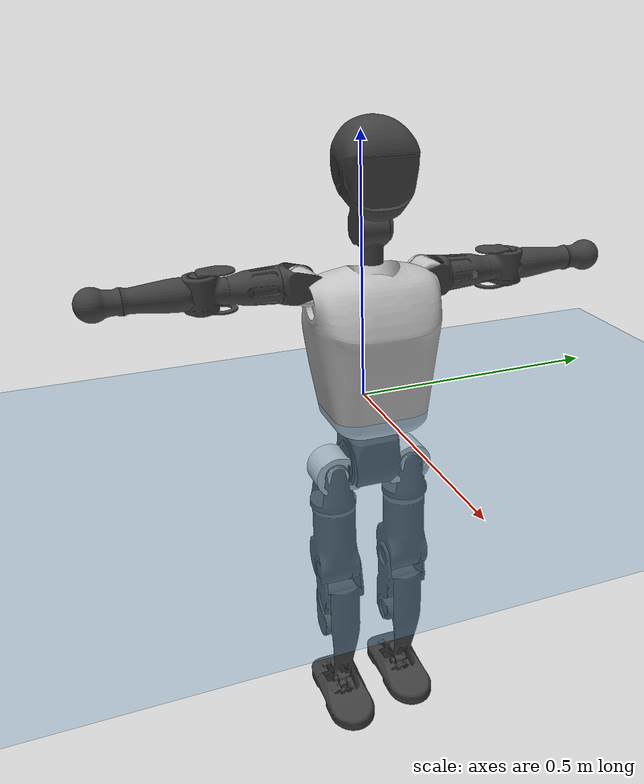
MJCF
<mujoco model="T1">
  <compiler angle="radian" assetdir="assets" balanceinertia="true" inertiafromgeom="false"/>

  <option timestep="0.005" density="1.2" viscosity="2e-05"/>

  <size nkey="1"/>

  <visual>
    <quality shadowsize="8192"/>
    <map shadowclip="0.5"/>
  </visual>

  <default>
    <default class="/">
      <joint armature="0.01" damping="0.01" frictionloss="0.1"/>
      <geom contype="0" conaffinity="0" group="1" solref="-1000 -80"/>
      <site size="0.01 0.005 0.005" group="5"/>
      <general forcelimited="true" biastype="affine" gainprm="25" biasprm="0 -25 -0.6"/>
      <default class="t1">
        <geom rgba="0.25 0.25 0.25 1"/>
        <default class="visual">
          <geom type="mesh" group="2"/>
        </default>
        <default class="collision">
          <geom group="3"/>
        </default>
        <default class="foot">
          <geom size="0.1115 0.05 0.015" type="box" condim="6" group="4" priority="1" solimp="0.015 1 0.015"/>
        </default>
        <default class="reward_collision_sphere">
          <geom group="5" rgba="1 0 0 1"/>
        </default>
      </default>
    </default>
  </default>

  <asset>
    <texture type="skybox" colorspace="auto" name="//unnamed_texture_0" builtin="gradient" rgb1="0.95 0.95 0.95" rgb2="0.95 0.95 0.95" width="100" height="600"/>
    <texture type="2d" colorspace="auto" name="texplane" builtin="checker" rgb1="0.345 0.575 0.748" rgb2="0.345 0.575 0.748" markrgb="1 1 1" width="512" height="512"/>
    <material name="MatPlane" class="/" texture="texplane" texuniform="true" texrepeat="2 2" specular="0.9"/>
    <mesh name="Trunk" class="/" file="Trunk.stl"/>
    <mesh name="H1" class="/" file="H1.stl"/>
    <mesh name="H2" class="/" file="H2.stl"/>
    <mesh name="AL1" class="/" file="AL1.stl"/>
    <mesh name="AL2" class="/" file="AL2.stl"/>
    <mesh name="AL3" class="/" file="AL3.stl"/>
    <mesh name="left_hand_link" class="/" file="left_hand_link.stl"/>
    <mesh name="AR1" class="/" file="AR1.stl"/>
    <mesh name="AR2" class="/" file="AR2.stl"/>
    <mesh name="AR3" class="/" file="AR3.stl"/>
    <mesh name="right_hand_link" class="/" file="right_hand_link.stl"/>
    <mesh name="Waist" class="/" file="Waist.stl"/>
    <mesh name="Hip_Pitch_Left" class="/" file="Hip_Pitch_Left.stl"/>
    <mesh name="Hip_Roll_Left" class="/" file="Hip_Roll_Left.stl"/>
    <mesh name="Hip_Yaw_Left" class="/" file="Hip_Yaw_Left.stl"/>
    <mesh name="Shank_Left" class="/" file="Shank_Left.stl"/>
    <mesh name="Ankle_Cross_Left" class="/" file="Ankle_Cross_Left.stl"/>
    <mesh name="left_foot_link" class="/" file="left_foot_link.stl"/>
    <mesh name="Hip_Pitch_Right" class="/" file="Hip_Pitch_Right.stl"/>
    <mesh name="Hip_Roll_Right" class="/" file="Hip_Roll_Right.stl"/>
    <mesh name="Hip_Yaw_Right" class="/" file="Hip_Yaw_Right.stl"/>
    <mesh name="Shank_Right" class="/" file="Shank_Right.stl"/>
    <mesh name="Ankle_Cross_Right" class="/" file="Ankle_Cross_Right.stl"/>
    <mesh name="right_foot_link" class="/" file="right_foot_link.stl"/>
  </asset>

  <worldbody>
    <geom name="floor" class="/" size="100 100 0.125" type="plane" group="0" material="MatPlane"/>
    <light name="toplight_shadow" class="/" pos="0 0 5" dir="0.0990148 0.0990148 -0.990148" type="directional" ambient="0.04 0.04 0.04" diffuse="0.55 0.55 0.55" specular="0.12 0.12 0.12"/>
    <light name="toplight_fill" class="/" pos="0 0 5" dir="0.0990148 0.0990148 -0.990148" type="directional" castshadow="false" ambient="0.04 0.04 0.04" diffuse="0.3 0.3 0.3" specular="0.08 0.08 0.08"/>
    <body name="trunk" childclass="t1" pos="-0.00263673 -0.000256816 -0.00109948" quat="0.999999 0.000512636 -0.000821101 -0.000265855">
      <inertial pos="0.0226895 -0.000303423 0.11646" quat="0.999952 0.000703869 -0.00906243 -0.00359469" mass="4.6573" diaginertia="0.00119701 0.0179255 0.0854578"/>
      <joint name="//unnamed_joint_0" type="free" armature="0" damping="0" frictionloss="0"/>
      <geom name="//unnamed_geom_1" class="visual" rgba="0.76 0.76 0.76 1" mesh="Trunk"/>
      <geom name="//unnamed_geom_2" class="collision" size="0.0568113 0.0757485 0.113623" pos="0.0255667 0 0.131707" type="box"/>
      <geom name="//unnamed_geom_3" class="reward_collision_sphere" size="0.0871107" pos="0.0255667 0 0.109756"/>
      <geom name="//unnamed_geom_4" class="reward_collision_sphere" size="0.0113623" pos="0.0255667 0.0636468 0"/>
      <geom name="//unnamed_geom_5" class="reward_collision_sphere" size="0.0113623" pos="0.0255667 -0.0636468 0"/>
      <geom name="//unnamed_geom_6" class="reward_collision_sphere" size="0.0113623" pos="0.0255667 0.08012 0.19756"/>
      <geom name="//unnamed_geom_7" class="reward_collision_sphere" size="0.0113623" pos="0.0255667 -0.08012 0.19756"/>
      <site name="imu" pos="0.0331209 0.001126 -0.0173494" size="0.00757485"/>
      <camera name="track" pos="0 -1.49757 0" quat="0.707107 0.707107 0 0" mode="trackcom"/>
      <camera name="ego_camera" pos="0.0519857 0 0.460974" quat="-0.5 -0.5 0.5 0.5"/>
      <body name="H1" pos="0.0346323 0.00696653 0.274674" quat="1 -8.96567e-05 -0.000397013 -0.000451936">
        <inertial pos="0.00153445 -0.00234178 0.0637766" quat="0.783835 -0.0244952 0.00623399 0.620455" mass="0.179725" diaginertia="3.41323e-06 5.66301e-05 0.000232673"/>
        <joint name="AAHead_yaw" pos="0 0 0" axis="-0.0151642 -0.027252 0.999514" range="-1.60404 1.58564" armature="0.00570229" damping="0.00671533" frictionloss="0.0702345"/>
        <geom name="//unnamed_geom_8" class="visual" mesh="H1"/>
        <body name="H2" pos="0.000116139 -0.00149596 0.0671544" quat="0.999998 -0.000320258 -0.00217265 -0.000114455">
          <inertial pos="0.00257572 0.00838194 0.107232" quat="0.987147 0.114198 -0.0756302 -0.082336" mass="0.255205" diaginertia="2.81355e-05 0.000451408 0.00266664"/>
          <joint name="Head_pitch" pos="0 0 0" axis="3.54942e-05 -1 -0.000189432" stiffness="0.00670585" range="-1.19651 0.343337" armature="0.0066041" damping="0.00352538" frictionloss="0.0729904"/>
          <geom name="//unnamed_geom_9" class="visual" mesh="H2"/>
          <geom name="//unnamed_geom_10" class="collision" size="0.0605988" pos="0.00426112 0 0.120731"/>
          <geom name="//unnamed_geom_11" class="reward_collision_sphere" size="0.0681736" pos="0.00852224 0 0.109756"/>
        </body>
      </body>
      <body name="AL1" pos="0.0248371 0.0735427 0.238384" quat="1 1.81241e-05 0.000184257 0.00011892">
        <inertial pos="0.00689322 0.0269454 0.0039577" quat="0.5072 0.49978 -0.502116 0.490763" mass="0.223608" diaginertia="1.83948e-05 0.000292843 0.000450278"/>
        <joint name="Left_Shoulder_Pitch" pos="0 0 0" axis="-0.0132786 0.999899 0.00509519" range="-3.31635 1.20286" armature="0.00679308" damping="0" frictionloss="0.0869615"/>
        <geom name="//unnamed_geom_12" class="visual" rgba="0.76 0.76 0.76 1" mesh="AL1"/>
        <body name="AL2" pos="0.00405445 0.0300324 -0.00266084" quat="1 7.77772e-05 4.36951e-05 2.91214e-06">
          <inertial pos="0.00257157 0.0267797 -0.00129766" quat="0.487728 0.511684 -0.488279 0.511746" mass="0.0672825" diaginertia="4.92003e-06 6.77067e-05 0.000266083"/>
          <joint name="Left_Shoulder_Roll" pos="0 0 0" axis="-1 -0.000405874 0.000436439" range="-1.62683 1.84993" armature="0.00727322" damping="0" frictionloss="0.0672348"/>
          <geom name="//unnamed_geom_13" class="visual" mesh="AL2"/>
          <body name="AL3" pos="-0.0065914 0.0442655 -0.000853085" quat="0.999999 0.000967619 0.000108153 0.000512483">
            <inertial pos="0.000426087 0.0655715 -0.00448935" quat="0.695905 0.717961 -0.0107039 0.0115628" mass="0.438391" diaginertia="0.000173012 0.00303238 0.00100308"/>
            <joint name="Left_Elbow_Pitch" pos="0 0 0" axis="0.011041 -0.999921 0.00597973" range="-2.31713 2.17337" armature="0.00957183" damping="0.00706373" frictionloss="0.0708231"/>
            <geom name="//unnamed_geom_14" class="visual" mesh="AL3"/>
            <geom name="//unnamed_geom_15" class="collision" size="0.0227245 0.0568113" pos="0 0.0374393 0" quat="0.707105 0.707108 0 0" type="cylinder"/>
            <geom name="//unnamed_geom_16" class="reward_collision_sphere" size="0.0272694"/>
            <body name="left_hand_link" pos="0.000558257 0.109671 0.000905091" quat="0.999998 0.00176057 0.000716922 -0.000151566">
              <inertial pos="-0.00835697 0.0869389 -0.00160703" quat="0.707655 0.706556 0.00129575 -0.00161855" mass="0.142929" diaginertia="0.000108825 0.00186211 0.000357756"/>
              <joint name="Left_Elbow_Yaw" pos="0 0 0" axis="-0.00820162 0.0107998 0.999908" range="-2.46585 0.0413796" armature="0.00598529" damping="0" frictionloss="0.0599562"/>
              <geom name="//unnamed_geom_17" class="visual" mesh="left_hand_link"/>
              <geom name="//unnamed_geom_18" class="collision" size="0.0227245 0.0662799" pos="0 0.0973421 0" quat="0.707105 0.707108 0 0" type="cylinder"/>
              <geom name="//unnamed_geom_19" class="reward_collision_sphere" size="0.0378742"/>
              <geom name="//unnamed_geom_20" class="reward_collision_sphere" size="0.026512" pos="0 0.0823664 0"/>
              <geom name="//unnamed_geom_21" class="reward_collision_sphere" size="0.026512" pos="0 0.160989 0"/>
            </body>
          </body>
        </body>
      </body>
      <body name="AR1" pos="0.021555 -0.0737112 0.24232" quat="1 -7.27815e-05 -9.24674e-05 0.000569192">
        <inertial pos="-0.0012468 -0.0330191 -0.000777511" quat="0.504553 0.496014 -0.50409 0.495268" mass="0.22526" diaginertia="1.91748e-05 0.000305933 0.000458582"/>
        <joint name="Right_Shoulder_Pitch" pos="0 0 0" axis="0.0040393 -0.999983 0.00420114" range="-1.18537 3.32713" armature="0.00659285" damping="0.0382604" frictionloss="0.0823827"/>
        <geom name="//unnamed_geom_22" class="visual" rgba="0.76 0.76 0.76 1" mesh="AR1"/>
        <body name="AR2" pos="-0.00323557 -0.0354025 0.00607299" quat="1 0.000858666 -3.92165e-05 3.52107e-05">
          <inertial pos="0.00329492 -0.0323942 0.00718384" quat="0.509401 0.494295 -0.515529 0.480014" mass="0.0679208" diaginertia="5.45086e-06 8.54316e-05 0.00027115"/>
          <joint name="Right_Shoulder_Roll" pos="0 0 0" axis="-1 0.000556205 0.000104499" stiffness="0.0271297" range="-1.89053 1.5294" armature="0.00741469" damping="0" frictionloss="0.0689258"/>
          <geom name="//unnamed_geom_23" class="visual" mesh="AR2"/>
          <body name="AR3" pos="-0.00346476 -0.0478512 0.000542305" quat="0.999999 -0.000676964 -0.000802678 0.00017047">
            <inertial pos="0.00625694 -0.0635128 -0.000901181" quat="0.70376 0.710429 0.00154632 0.00310372" mass="0.440794" diaginertia="0.000175701 0.00302812 0.000901901"/>
            <joint name="Right_Elbow_Pitch" pos="0 0 0" axis="0.00566181 0.999984 -0.000644629" stiffness="0.0215488" range="-2.26311 2.31853" armature="0.00745574" damping="0" frictionloss="0.100177"/>
            <geom name="//unnamed_geom_24" class="visual" mesh="AR3"/>
            <geom name="//unnamed_geom_25" class="collision" size="0.0227245 0.0568113" pos="0 -0.0374393 0" quat="0.707105 0.707108 0 0" type="cylinder"/>
            <geom name="//unnamed_geom_26" class="reward_collision_sphere" size="0.0272694"/>
            <body name="right_hand_link" pos="-0.00236734 -0.111915 0.0013911" quat="1 -0.000514988 -0.000446457 -0.000720377">
              <inertial pos="0.00128702 -0.0840094 -0.00445392" quat="0.706058 0.708153 -0.000559783 -0.000394952" mass="0.136682" diaginertia="0.000113873 0.00199205 0.000334905"/>
              <joint name="Right_Elbow_Yaw" pos="0 0 0" axis="0.0012097 0.00147418 0.999998" range="-0.0399537 2.42862" armature="0.00752615" damping="0.00390302" frictionloss="0.0980575"/>
              <geom name="//unnamed_geom_27" class="visual" mesh="right_hand_link"/>
              <geom name="//unnamed_geom_28" class="collision" size="0.0227245 0.0662799" pos="0 -0.0973421 0" quat="0.707105 0.707108 0 0" type="cylinder"/>
              <geom name="//unnamed_geom_29" class="reward_collision_sphere" size="0.0378742"/>
              <geom name="//unnamed_geom_30" class="reward_collision_sphere" size="0.026512" pos="0 -0.0823664 0"/>
              <geom name="//unnamed_geom_31" class="reward_collision_sphere" size="0.026512" pos="0 -0.160989 0"/>
            </body>
          </body>
        </body>
      </body>
      <body name="Waist" pos="0.0282985 -0.000992048 -0.125311" quat="1 -0.000517726 -0.000667486 -0.000324992">
        <inertial pos="0.00103118 -0.00173787 0.00642921" quat="0.98283 -0.00600201 -0.184331 0.00550801" mass="1.17009" diaginertia="6.81116e-05 0.00127833 0.00681207"/>
        <joint name="Waist" pos="0 0 0" axis="-0.019983 -0.00387848 0.999793" range="-1.53005 1.60737" armature="0.00770099" damping="0.00527429" frictionloss="0.0977803"/>
        <geom name="//unnamed_geom_32" class="visual" mesh="Waist"/>
        <body name="Hip_Pitch_Left" pos="0.00187988 0.0806396 -0.000882814" quat="0.999999 0.000950979 -0.000167462 0.00078726">
          <inertial pos="-0.00123088 -0.00121895 -0.0196083" quat="0.975949 0.217414 0.0159204 -0.00100909" mass="0.429622" diaginertia="2.53067e-05 0.000316855 0.00179271"/>
          <joint name="Left_Hip_Pitch" pos="0 0 0" axis="-0.000652864 0.99995 -0.00997962" range="-1.8144 1.5606" armature="0.00659832" damping="0" frictionloss="0.0768486"/>
          <geom name="//unnamed_geom_33" class="visual" rgba="0.76 0.76 0.76 1" mesh="Hip_Pitch_Left"/>
          <body name="Hip_Roll_Left" pos="-0.00603375 0.00196966 -0.020183" quat="0.999996 -0.00120921 0.00241197 6.93452e-05">
            <inertial pos="-0.00214523 0.00172791 -0.0586827" quat="0.711737 -0.00140857 -0.00858623 0.702392" mass="0.192206" diaginertia="2.92634e-05 0.000385875 0.000916879"/>
            <joint name="Left_Hip_Roll" pos="0 0 0" axis="-0.999691 0.00443553 -0.0244546" range="-1.70198 0.151297" armature="0.00817802" damping="0.0146786" frictionloss="0.0757919"/>
            <geom name="//unnamed_geom_34" class="visual" mesh="Hip_Roll_Left"/>
            <geom name="//unnamed_geom_35" class="reward_collision_sphere" size="0.0416617"/>
            <body name="Hip_Yaw_Left" pos="-0.00137026 -0.000557231 -0.0915919" quat="0.999996 0.00135085 -0.00197791 0.00145129">
              <inertial pos="0.00383634 -0.0019368 -0.0988027" quat="0.695441 -0.0309917 -0.0380387 0.716906" mass="0.897955" diaginertia="0.000323265 0.00591352 0.00412659"/>
              <joint name="Left_Hip_Yaw" pos="0 0 0" axis="-0.00434122 -0.00380346 -0.999983" stiffness="0.0299935" range="-1.14924 0.897652" armature="0.00771622" damping="0.0156811" frictionloss="0.0584985"/>
              <geom name="//unnamed_geom_36" class="visual" mesh="Hip_Yaw_Left"/>
              <geom name="//unnamed_geom_37" class="collision" size="0.0378742 0.0605988" type="cylinder"/>
              <body name="Shank_Left" pos="-0.00340157 -0.00586165 -0.147633" quat="1 6.1548e-05 0.000273804 -0.000118451">
                <inertial pos="0.0048059 0.00128566 -0.13562" quat="0.996705 0.0211517 -0.0540038 0.0566991" mass="0.78528" diaginertia="0.000494471 0.0074349 0.00290787"/>
                <joint name="Left_Knee_Pitch" pos="0 0 0" axis="0.00217106 0.999697 -0.0245333" range="0.0161521 2.26361" armature="0.00880801" damping="0.0155542" frictionloss="0.0503267"/>
                <geom name="//unnamed_geom_38" class="visual" mesh="Shank_Left"/>
                <geom name="//unnamed_geom_39" class="collision" size="0.0378742 0.0568113" pos="0 0 -0.131707" type="cylinder"/>
                <geom name="//unnamed_geom_40" class="reward_collision_sphere" size="0.0492365"/>
                <body name="Ankle_Cross_Left" pos="0.00148022 -0.0023239 -0.30766" quat="1 -0.000805724 0.000410726 9.18509e-05">
                  <inertial pos="-0.00121918 0.00174139 -0.0110395" quat="0.442031 0.559762 0.544032 0.441932" mass="0.0311629" diaginertia="3.96686e-07 5.89001e-06 1.81505e-05"/>
                  <joint name="Left_Ankle_Pitch" pos="0 0 0" axis="0.00967284 0.999833 0.0155161" range="-0.867062 0.406085" armature="0.00470681" damping="0" frictionloss="0.077812"/>
                  <geom name="//unnamed_geom_41" class="visual" mesh="Ankle_Cross_Left"/>
                  <body name="left_foot_link" pos="-0.00743351 0.00255768 -0.0128376" quat="1 0.000151814 -0.000278256 0.000432015">
                    <inertial pos="0.00650264 -0.00265039 -0.0103368" quat="0.00355901 0.615538 0.0081033 0.788057" mass="0.298677" diaginertia="3.81696e-05 0.000588253 0.00380486"/>
                    <joint name="Left_Ankle_Roll" pos="0 0 0" axis="-0.999963 0.00855419 0.00103862" stiffness="0.00671769" range="-0.477752 0.458932" armature="0.00727101" damping="0.0457424" frictionloss="0.0673974"/>
                    <geom name="//unnamed_geom_42" class="visual" mesh="left_foot_link"/>
                    <geom name="left_foot" class="foot" size="0.0909578 0.0464651 0.0120193" pos="0.00426112 0 -0.0164633"/>
                    <geom name="//unnamed_geom_44" class="reward_collision_sphere" size="0.0393892" pos="0.00426112 0 -0.0164633"/>
                    <geom name="//unnamed_geom_45" class="reward_collision_sphere" size="0.0227245" pos="0.0404807 -0.0172221 -0.0164633"/>
                    <geom name="//unnamed_geom_46" class="reward_collision_sphere" size="0.0227245" pos="-0.0298279 -0.0172221 -0.0164633"/>
                    <site name="left_foot" class="foot" pos="0.00426112 0 -0.0164633" size="0.00757485"/>
                  </body>
                </body>
              </body>
            </body>
          </body>
        </body>
        <body name="Hip_Pitch_Right" pos="0.00179506 -0.0775146 0.00256163" quat="1 0.000370955 -0.000716255 0.000228877">
          <inertial pos="-0.00195708 0.00588011 -0.014686" quat="0.973323 -0.228671 0.0187626 -0.000796817" mass="0.457079" diaginertia="2.76216e-05 0.000318507 0.00197582"/>
          <joint name="Right_Hip_Pitch" pos="0 0 0" axis="0.00100332 -0.999997 -0.00219134" stiffness="0.00134365" range="-1.40299 1.65998" armature="0.00866702" damping="0" frictionloss="0.0999698"/>
          <geom name="//unnamed_geom_47" class="visual" rgba="0.76 0.76 0.76 1" mesh="Hip_Pitch_Right"/>
          <body name="Hip_Roll_Right" pos="-0.00678151 0.000756966 -0.0211071" quat="0.999999 -0.00146386 0.000206041 -0.000417043">
            <inertial pos="-0.000323765 0.00392328 -0.0631808" quat="0.71001 -0.00702615 -0.00323595 0.704149" mass="0.175555" diaginertia="2.59365e-05 0.000376479 0.00079919"/>
            <joint name="Right_Hip_Roll" pos="0 0 0" axis="-0.999483 -0.0192834 0.0257385" range="-0.198999 1.53444" armature="0.00856403" damping="0.00589182" frictionloss="0.0829436"/>
            <geom name="//unnamed_geom_48" class="visual" mesh="Hip_Roll_Right"/>
            <geom name="//unnamed_geom_49" class="reward_collision_sphere" size="0.0416617"/>
            <body name="Hip_Yaw_Right" pos="0.00500417 7.36789e-05 -0.0854094" quat="1 -0.000560335 -0.000421049 -0.000444545">
              <inertial pos="-0.00416828 -0.00605861 -0.0959243" quat="0.734233 -0.034171 -0.00554444 0.678014" mass="0.939998" diaginertia="0.000355874 0.0059274 0.00402624"/>
              <joint name="Right_Hip_Yaw" pos="0 0 0" axis="0.000216604 0.00827507 -0.999966" stiffness="0.00414414" range="-1.02432 1.02779" armature="0.00668466" damping="0" frictionloss="0.0753777"/>
              <geom name="//unnamed_geom_50" class="visual" mesh="Hip_Yaw_Right"/>
              <geom name="//unnamed_geom_51" class="collision" size="0.0378742 0.0605988" type="cylinder"/>
              <body name="Shank_Right" pos="-0.0039212 0.00664979 -0.151257" quat="1 0.000303976 -0.000123545 -1.98562e-05">
                <inertial pos="0.00455836 -0.00834709 -0.133947" quat="0.999093 -0.0220841 -0.0237165 -0.0276354" mass="0.752573" diaginertia="0.000537084 0.0088017 0.003245"/>
                <joint name="Right_Knee_Pitch" pos="0 0 0" axis="0.00728126 -0.999973 0.00043693" range="-2.31329 0.0239539" armature="0.00740864" damping="0.0153767" frictionloss="0.0778721"/>
                <geom name="//unnamed_geom_52" class="visual" mesh="Shank_Right"/>
                <geom name="//unnamed_geom_53" class="collision" size="0.0378742 0.0568113" pos="0 0 -0.131707" type="cylinder"/>
                <geom name="//unnamed_geom_54" class="reward_collision_sphere" size="0.0492365"/>
                <body name="Ankle_Cross_Right" pos="0.00453455 0.000255108 -0.309124" quat="0.999999 0.000533654 0.000835378 -0.000547581">
                  <inertial pos="-0.0027284 0.0049278 -0.00761391" quat="0.456772 0.569723 0.528769 0.432641" mass="0.0309751" diaginertia="4.00674e-07 7.06527e-06 1.89045e-05"/>
                  <joint name="Right_Ankle_Pitch" pos="0 0 0" axis="-0.0139005 -0.999852 0.0101485" stiffness="0.00281168" range="-0.369338 0.865993" armature="0.0062629" damping="0.0355225" frictionloss="0.069883"/>
                  <geom name="//unnamed_geom_55" class="visual" mesh="Ankle_Cross_Right"/>
                  <body name="right_foot_link" pos="0.00315519 -0.00104404 -0.0189481" quat="1 -5.09518e-05 -5.41286e-05 -6.34631e-05">
                    <inertial pos="-0.00150682 0.000192116 -0.0155487" quat="0.0101265 0.619984 0.000834505 0.784548" mass="0.29119" diaginertia="3.54792e-05 0.000566748 0.00340437"/>
                    <joint name="Right_Ankle_Roll" pos="0 0 0" axis="-0.999964 -0.00479323 -0.00695252" range="-0.470134 0.486461" armature="0.00709132" damping="0" frictionloss="0.0860255"/>
                    <geom name="//unnamed_geom_56" class="visual" mesh="right_foot_link"/>
                    <geom name="right_foot" class="foot" size="0.0956914 0.0417876 0.0115408" pos="0.00426112 0 -0.0164633"/>
                    <geom name="//unnamed_geom_58" class="reward_collision_sphere" size="0.0302994"/>
                    <geom name="//unnamed_geom_59" class="reward_collision_sphere" size="0.0227245" pos="0.00426112 0 -0.0164633"/>
                    <geom name="//unnamed_geom_60" class="reward_collision_sphere" size="0.0227245" pos="0.0404807 0.0172221 -0.0164633"/>
                    <geom name="//unnamed_geom_61" class="reward_collision_sphere" size="0.0227245" pos="-0.0298279 0.0172221 -0.0164633"/>
                    <site name="right_foot" class="foot" pos="0.00426112 0 -0.0164633" size="0.00757485"/>
                  </body>
                </body>
              </body>
            </body>
          </body>
        </body>
      </body>
    </body>
  </worldbody>

  <contact>
    <pair class="/" geom1="floor" geom2="left_foot" name="//unnamed_contact_0"/>
    <pair class="/" geom1="floor" geom2="right_foot" name="//unnamed_contact_1"/>
  </contact>

  <actuator>
    <general name="AAHead_yaw" class="/" joint="AAHead_yaw" forcerange="-4.70158 4.70158" gainprm="19.0949" biasprm="0 -19.0949 -0.50252"/>
    <general name="Head_pitch" class="/" joint="Head_pitch" forcerange="-5.67887 5.67887" gainprm="19.0949" biasprm="0 -19.0949 -0.50252"/>
    <general name="Left_Shoulder_Pitch" class="/" joint="Left_Shoulder_Pitch" forcerange="-14.7539 14.7539" gainprm="19.0949" biasprm="0 -19.0949 -0.50252"/>
    <general name="Left_Shoulder_Roll" class="/" joint="Left_Shoulder_Roll" forcerange="-12.5995 12.5995" gainprm="19.0949" biasprm="0 -19.0949 -0.50252"/>
    <general name="Left_Elbow_Pitch" class="/" joint="Left_Elbow_Pitch" forcerange="-11.8474 11.8474" gainprm="19.0949" biasprm="0 -19.0949 -0.50252"/>
    <general name="Left_Elbow_Yaw" class="/" joint="Left_Elbow_Yaw" forcerange="-12.8626 12.8626" gainprm="19.0949" biasprm="0 -19.0949 -0.50252"/>
    <general name="Right_Shoulder_Pitch" class="/" joint="Right_Shoulder_Pitch" forcerange="-13.8736 13.8736" gainprm="19.0949" biasprm="0 -19.0949 -0.50252"/>
    <general name="Right_Shoulder_Roll" class="/" joint="Right_Shoulder_Roll" forcerange="-12.8743 12.8743" gainprm="19.0949" biasprm="0 -19.0949 -0.50252"/>
    <general name="Right_Elbow_Pitch" class="/" joint="Right_Elbow_Pitch" forcerange="-13.2464 13.2464" gainprm="19.0949" biasprm="0 -19.0949 -0.50252"/>
    <general name="Right_Elbow_Yaw" class="/" joint="Right_Elbow_Yaw" forcerange="-14.3611 14.3611" gainprm="19.0949" biasprm="0 -19.0949 -0.50252"/>
    <general name="Waist" class="/" joint="Waist" forcerange="-21.2722 21.2722" gainprm="19.0949" biasprm="0 -19.0949 -0.50252"/>
    <general name="Left_Hip_Pitch" class="/" joint="Left_Hip_Pitch" forcerange="-34.2449 34.2449" gainprm="19.0949" biasprm="0 -19.0949 -0.50252"/>
    <general name="Left_Hip_Roll" class="/" joint="Left_Hip_Roll" forcerange="-24.4352 24.4352" gainprm="19.0949" biasprm="0 -19.0949 -0.50252"/>
    <general name="Left_Hip_Yaw" class="/" joint="Left_Hip_Yaw" forcerange="-25.8518 25.8518" gainprm="19.0949" biasprm="0 -19.0949 -0.50252"/>
    <general name="Left_Knee_Pitch" class="/" joint="Left_Knee_Pitch" forcerange="-43.8788 43.8788" gainprm="19.0949" biasprm="0 -19.0949 -0.50252"/>
    <general name="Left_Ankle_Pitch" class="/" joint="Left_Ankle_Pitch" forcerange="-15.8086 15.8086" gainprm="19.0949" biasprm="0 -19.0949 -0.50252"/>
    <general name="Left_Ankle_Roll" class="/" joint="Left_Ankle_Roll" forcerange="-10.5938 10.5938" gainprm="19.0949" biasprm="0 -19.0949 -0.50252"/>
    <general name="Right_Hip_Pitch" class="/" joint="Right_Hip_Pitch" forcerange="-31.4515 31.4515" gainprm="19.0949" biasprm="0 -19.0949 -0.50252"/>
    <general name="Right_Hip_Roll" class="/" joint="Right_Hip_Roll" forcerange="-20.9269 20.9269" gainprm="19.0949" biasprm="0 -19.0949 -0.50252"/>
    <general name="Right_Hip_Yaw" class="/" joint="Right_Hip_Yaw" forcerange="-22.1876 22.1876" gainprm="19.0949" biasprm="0 -19.0949 -0.50252"/>
    <general name="Right_Knee_Pitch" class="/" joint="Right_Knee_Pitch" forcerange="-52.1079 52.1079" gainprm="19.0949" biasprm="0 -19.0949 -0.50252"/>
    <general name="Right_Ankle_Pitch" class="/" joint="Right_Ankle_Pitch" forcerange="-18.2136 18.2136" gainprm="19.0949" biasprm="0 -19.0949 -0.50252"/>
    <general name="Right_Ankle_Roll" class="/" joint="Right_Ankle_Roll" forcerange="-11.6851 11.6851" gainprm="19.0949" biasprm="0 -19.0949 -0.50252"/>
  </actuator>

  <sensor>
    <gyro site="imu" name="imu_angular_velocity"/>
    <velocimeter site="imu" name="imu_linear_velocity"/>
    <framelinvel objtype="site" objname="left_foot" name="left_foot_global_linear_velocity"/>
    <framelinvel objtype="site" objname="right_foot" name="right_foot_global_linear_velocity"/>
  </sensor>

  <keyframe>
    <key name="home" qpos="0 0 0.6385 1 0 0 0 0 0 0 1.4 0 -0.4 0 -1.4 0 0.4 0 -0.4 0 0 0.8 -0.4 0 0.4 0 0 -0.8 0.4 0"/>
  </keyframe>
</mujoco>
